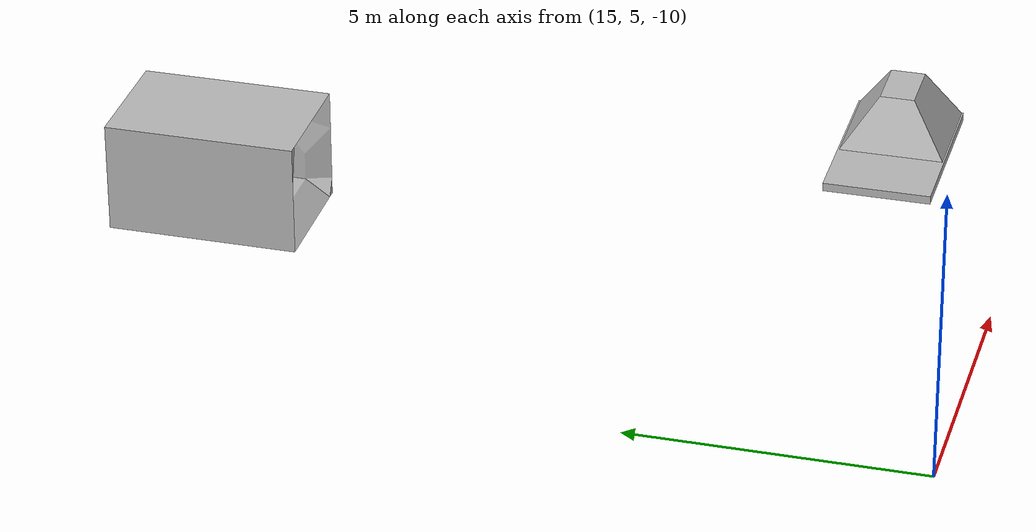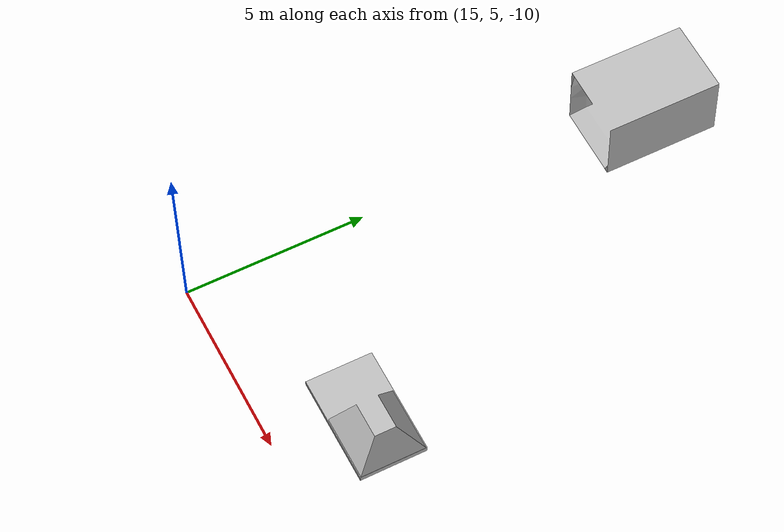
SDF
<sdf version="1.6">
 <world name="tank">
  <model name="nwu">
   <static>true</static>
   <link name="base"/>
   <link name="orientation"/>
   <joint name="__joint_orientation" type="fixed"><child>orientation</child><parent>base</parent></joint>
  </model>
  <spherical_coordinates>
   <latitude_deg>53.1119</latitude_deg>
   <longitude_deg>8.8584</longitude_deg>
   <heading_deg>90</heading_deg>
  </spherical_coordinates>
  <model name="surface"><static>true</static></model>
  <model name="usbl"><static>true</static></model>
  <include><uri>model://docking_station</uri><pose>16.80 17.52 -8 0 0 0</pose></include>
  <include><uri>model://dat</uri><pose>21.3 7 -8 0 0 -1.57</pose></include>
  <include><uri>model://apriltag_13</uri><pose>16.825 18.65 -7.3 0 -1.57 1.57</pose></include>
  <physics type="ode">
   <max_step_size>0.01</max_step_size>
   <real_time_factor>1</real_time_factor>
   <real_time_update_rate>100</real_time_update_rate>
  </physics>
  <plugin name="underwater" filename="libgazebo_underwater.so">
   <model_name>flat_fish</model_name>
   <link_name>flat_fish_body</link_name>
   <drag_coefficient>5 7.5 12.5</drag_coefficient>
   <center_of_buoyancy>0 0 0.1</center_of_buoyancy>
   <buoyancy>18</buoyancy>
  </plugin>
 </world>
</sdf>

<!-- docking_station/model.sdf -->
<sdf version="1.4">
    <model name="docking_station">
        <pose>0 0 0 0 0 0</pose>
        <static>true</static>
        <link name="docking_station_body">
            <visual name="visual">
                <geometry>
                    <mesh>
                        <uri>model://docking_station/visual.osgb</uri>
                    </mesh>
                </geometry>
            </visual>
            <collision name="collision">
                <geometry>
                    <mesh>
                        <uri>model://docking_station/collision.stl</uri>
                    </mesh>
                </geometry>
            </collision>
            <inertial>
                <pose>0 0 -1 0 0 0</pose>
                <inertia>
                    <ixx>0.0</ixx>
                    <ixy>0</ixy>
                    <ixz>0.0</ixz>
                    <iyy>0.0</iyy>
                    <iyz>0</iyz>
                    <izz>0.0</izz>
                </inertia>
                <mass>1.0</mass>
            </inertial>
        </link>
    </model>
</sdf>

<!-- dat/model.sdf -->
<sdf version="1.4">
    <model name="dat">
        <pose>0 0 0 0 0 0</pose>
        <static>true</static>
        <link name="dat_body">
            <visual name="visual">
                <geometry>
                    <mesh>
                        <uri>model://dat/visual.osgb</uri>
                    </mesh>
                </geometry>
            </visual>
            <collision name="collision">
                <geometry>
                    <mesh>
                        <uri>model://dat/collision.stl</uri>
                    </mesh>
                </geometry>
            </collision>
            <inertial>
                <pose>0 0 -1 0 0 0</pose>
                <inertia>
                    <ixx>0.0</ixx>
                    <ixy>0</ixy>
                    <ixz>0.0</ixz>
                    <iyy>0.0</iyy>
                    <iyz>0</iyz>
                    <izz>0.0</izz>
                </inertia>
                <mass>1.0</mass>
            </inertial>
        </link>
    </model>
</sdf>

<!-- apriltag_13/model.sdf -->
<sdf version="1.4">
  <model name='apriltag_13'>
  <static>true</static>
  <pose>0 0 0 0 0 0</pose>
     <link name='apriltag_body'>
      <visual name='block0'>
        <pose>-0.1575 -0.1575 0.001 0 0 0</pose>
          <geometry>
            <box>
            <size>0.035 0.035 0.003</size>
            </box>
          </geometry>
        <material>
          <ambient>1 1 1 1</ambient>
          <diffuse>1 1 1 1</diffuse>
          <specular>1 1 1 1</specular>
        </material>
      </visual>
      <visual name='block1'>
        <pose>-0.1575 -0.1225 0.001 0 0 0</pose>
          <geometry>
            <box>
            <size>0.035 0.035 0.003</size>
            </box>
          </geometry>
        <material>
          <ambient>1 1 1 1</ambient>
          <diffuse>1 1 1 1</diffuse>
          <specular>1 1 1 1</specular>
        </material>
      </visual>
      <visual name='block2'>
        <pose>-0.1575 -0.0875 0.001 0 0 0</pose>
          <geometry>
            <box>
            <size>0.035 0.035 0.003</size>
            </box>
          </geometry>
        <material>
          <ambient>1 1 1 1</ambient>
          <diffuse>1 1 1 1</diffuse>
          <specular>1 1 1 1</specular>
        </material>
      </visual>
      <visual name='block3'>
        <pose>-0.1575 -0.0525 0.001 0 0 0</pose>
          <geometry>
            <box>
            <size>0.035 0.035 0.003</size>
            </box>
          </geometry>
        <material>
          <ambient>1 1 1 1</ambient>
          <diffuse>1 1 1 1</diffuse>
          <specular>1 1 1 1</specular>
        </material>
      </visual>
      <visual name='block4'>
        <pose>-0.1575 -0.0175 0.001 0 0 0</pose>
          <geometry>
            <box>
            <size>0.035 0.035 0.003</size>
            </box>
          </geometry>
        <material>
          <ambient>1 1 1 1</ambient>
          <diffuse>1 1 1 1</diffuse>
          <specular>1 1 1 1</specular>
        </material>
      </visual>
      <visual name='block5'>
        <pose>-0.1575 0.0175 0.001 0 0 0</pose>
          <geometry>
            <box>
            <size>0.035 0.035 0.003</size>
            </box>
          </geometry>
        <material>
          <ambient>1 1 1 1</ambient>
          <diffuse>1 1 1 1</diffuse>
          <specular>1 1 1 1</specular>
        </material>
      </visual>
      <visual name='block6'>
        <pose>-0.1575 0.0525 0.001 0 0 0</pose>
          <geometry>
            <box>
            <size>0.035 0.035 0.003</size>
            </box>
          </geometry>
        <material>
          <ambient>1 1 1 1</ambient>
          <diffuse>1 1 1 1</diffuse>
          <specular>1 1 1 1</specular>
        </material>
      </visual>
      <visual name='block7'>
        <pose>-0.1575 0.0875 0.001 0 0 0</pose>
          <geometry>
            <box>
            <size>0.035 0.035 0.003</size>
            </box>
          </geometry>
        <material>
          <ambient>1 1 1 1</ambient>
          <diffuse>1 1 1 1</diffuse>
          <specular>1 1 1 1</specular>
        </material>
      </visual>
      <visual name='block8'>
        <pose>-0.1575 0.1225 0.001 0 0 0</pose>
          <geometry>
            <box>
            <size>0.035 0.035 0.003</size>
            </box>
          </geometry>
        <material>
          <ambient>1 1 1 1</ambient>
          <diffuse>1 1 1 1</diffuse>
          <specular>1 1 1 1</specular>
        </material>
      </visual>
      <visual name='block9'>
        <pose>-0.1575 0.1575 0.001 0 0 0</pose>
          <geometry>
            <box>
            <size>0.035 0.035 0.003</size>
            </box>
          </geometry>
        <material>
          <ambient>1 1 1 1</ambient>
          <diffuse>1 1 1 1</diffuse>
          <specular>1 1 1 1</specular>
        </material>
      </visual>
      <visual name='block10'>
        <pose>-0.1225 -0.1575 0.001 0 0 0</pose>
          <geometry>
            <box>
            <size>0.035 0.035 0.003</size>
            </box>
          </geometry>
        <material>
          <ambient>1 1 1 1</ambient>
          <diffuse>1 1 1 1</diffuse>
          <specular>1 1 1 1</specular>
        </material>
      </visual>
      <visual name='block11'>
        <pose>-0.1225 -0.1225 0.001 0 0 0</pose>
          <geometry>
            <box>
            <size>0.035 0.035 0.003</size>
            </box>
          </geometry>
        <material>
          <ambient>0 0 0 1</ambient>
          <diffuse>0 0 0 1</diffuse>
          <specular>0 0 0 1</specular>
        </material>
      </visual>
      <visual name='block12'>
        <pose>-0.1225 -0.0875 0.001 0 0 0</pose>
          <geometry>
            <box>
            <size>0.035 0.035 0.003</size>
            </box>
          </geometry>
        <material>
          <ambient>0 0 0 1</ambient>
          <diffuse>0 0 0 1</diffuse>
          <specular>0 0 0 1</specular>
        </material>
      </visual>
      <visual name='block13'>
        <pose>-0.1225 -0.0525 0.001 0 0 0</pose>
          <geometry>
            <box>
            <size>0.035 0.035 0.003</size>
            </box>
          </geometry>
        <material>
          <ambient>0 0 0 1</ambient>
          <diffuse>0 0 0 1</diffuse>
          <specular>0 0 0 1</specular>
        </material>
      </visual>
      <visual name='block14'>
        <pose>-0.1225 -0.0175 0.001 0 0 0</pose>
          <geometry>
            <box>
            <size>0.035 0.035 0.003</size>
            </box>
          </geometry>
        <material>
          <ambient>0 0 0 1</ambient>
          <diffuse>0 0 0 1</diffuse>
          <specular>0 0 0 1</specular>
        </material>
      </visual>
      <visual name='block15'>
        <pose>-0.1225 0.0175 0.001 0 0 0</pose>
          <geometry>
            <box>
            <size>0.035 0.035 0.003</size>
            </box>
          </geometry>
        <material>
          <ambient>0 0 0 1</ambient>
          <diffuse>0 0 0 1</diffuse>
          <specular>0 0 0 1</specular>
        </material>
      </visual>
      <visual name='block16'>
        <pose>-0.1225 0.0525 0.001 0 0 0</pose>
          <geometry>
            <box>
            <size>0.035 0.035 0.003</size>
            </box>
          </geometry>
        <material>
          <ambient>0 0 0 1</ambient>
          <diffuse>0 0 0 1</diffuse>
          <specular>0 0 0 1</specular>
        </material>
      </visual>
      <visual name='block17'>
        <pose>-0.1225 0.0875 0.001 0 0 0</pose>
          <geometry>
            <box>
            <size>0.035 0.035 0.003</size>
            </box>
          </geometry>
        <material>
          <ambient>0 0 0 1</ambient>
          <diffuse>0 0 0 1</diffuse>
          <specular>0 0 0 1</specular>
        </material>
      </visual>
      <visual name='block18'>
        <pose>-0.1225 0.1225 0.001 0 0 0</pose>
          <geometry>
            <box>
            <size>0.035 0.035 0.003</size>
            </box>
          </geometry>
        <material>
          <ambient>0 0 0 1</ambient>
          <diffuse>0 0 0 1</diffuse>
          <specular>0 0 0 1</specular>
        </material>
      </visual>
      <visual name='block19'>
        <pose>-0.1225 0.1575 0.001 0 0 0</pose>
          <geometry>
            <box>
            <size>0.035 0.035 0.003</size>
            </box>
          </geometry>
        <material>
          <ambient>1 1 1 1</ambient>
          <diffuse>1 1 1 1</diffuse>
          <specular>1 1 1 1</specular>
        </material>
      </visual>
      <visual name='block20'>
        <pose>-0.0875 -0.1575 0.001 0 0 0</pose>
          <geometry>
            <box>
            <size>0.035 0.035 0.003</size>
            </box>
          </geometry>
        <material>
          <ambient>1 1 1 1</ambient>
          <diffuse>1 1 1 1</diffuse>
          <specular>1 1 1 1</specular>
        </material>
      </visual>
      <visual name='block21'>
        <pose>-0.0875 -0.1225 0.001 0 0 0</pose>
          <geometry>
            <box>
            <size>0.035 0.035 0.003</size>
            </box>
          </geometry>
        <material>
          <ambient>0 0 0 1</ambient>
          <diffuse>0 0 0 1</diffuse>
          <specular>0 0 0 1</specular>
        </material>
      </visual>
      <visual name='block22'>
        <pose>-0.0875 -0.0875 0.001 0 0 0</pose>
          <geometry>
            <box>
            <size>0.035 0.035 0.003</size>
            </box>
          </geometry>
        <material>
          <ambient>0 0 0 1</ambient>
          <diffuse>0 0 0 1</diffuse>
          <specular>0 0 0 1</specular>
        </material>
      </visual>
      <visual name='block23'>
        <pose>-0.0875 -0.0525 0.001 0 0 0</pose>
          <geometry>
            <box>
            <size>0.035 0.035 0.003</size>
            </box>
          </geometry>
        <material>
          <ambient>1 1 1 1</ambient>
          <diffuse>1 1 1 1</diffuse>
          <specular>1 1 1 1</specular>
        </material>
      </visual>
      <visual name='block24'>
        <pose>-0.0875 -0.0175 0.001 0 0 0</pose>
          <geometry>
            <box>
            <size>0.035 0.035 0.003</size>
            </box>
          </geometry>
        <material>
          <ambient>0 0 0 1</ambient>
          <diffuse>0 0 0 1</diffuse>
          <specular>0 0 0 1</specular>
        </material>
      </visual>
      <visual name='block25'>
        <pose>-0.0875 0.0175 0.001 0 0 0</pose>
          <geometry>
            <box>
            <size>0.035 0.035 0.003</size>
            </box>
          </geometry>
        <material>
          <ambient>1 1 1 1</ambient>
          <diffuse>1 1 1 1</diffuse>
          <specular>1 1 1 1</specular>
        </material>
      </visual>
      <visual name='block26'>
        <pose>-0.0875 0.0525 0.001 0 0 0</pose>
          <geometry>
            <box>
            <size>0.035 0.035 0.003</size>
            </box>
          </geometry>
        <material>
          <ambient>1 1 1 1</ambient>
          <diffuse>1 1 1 1</diffuse>
          <specular>1 1 1 1</specular>
        </material>
      </visual>
      <visual name='block27'>
        <pose>-0.0875 0.0875 0.001 0 0 0</pose>
          <geometry>
            <box>
            <size>0.035 0.035 0.003</size>
            </box>
          </geometry>
        <material>
          <ambient>0 0 0 1</ambient>
          <diffuse>0 0 0 1</diffuse>
          <specular>0 0 0 1</specular>
        </material>
      </visual>
      <visual name='block28'>
        <pose>-0.0875 0.1225 0.001 0 0 0</pose>
          <geometry>
            <box>
            <size>0.035 0.035 0.003</size>
            </box>
          </geometry>
        <material>
          <ambient>0 0 0 1</ambient>
          <diffuse>0 0 0 1</diffuse>
          <specular>0 0 0 1</specular>
        </material>
      </visual>
      <visual name='block29'>
        <pose>-0.0875 0.1575 0.001 0 0 0</pose>
          <geometry>
            <box>
            <size>0.035 0.035 0.003</size>
            </box>
          </geometry>
        <material>
          <ambient>1 1 1 1</ambient>
          <diffuse>1 1 1 1</diffuse>
          <specular>1 1 1 1</specular>
        </material>
      </visual>
      <visual name='block30'>
        <pose>-0.0525 -0.1575 0.001 0 0 0</pose>
          <geometry>
            <box>
            <size>0.035 0.035 0.003</size>
            </box>
          </geometry>
        <material>
          <ambient>1 1 1 1</ambient>
          <diffuse>1 1 1 1</diffuse>
          <specular>1 1 1 1</specular>
        </material>
      </visual>
      <visual name='block31'>
        <pose>-0.0525 -0.1225 0.001 0 0 0</pose>
          <geometry>
            <box>
            <size>0.035 0.035 0.003</size>
            </box>
          </geometry>
        <material>
          <ambient>0 0 0 1</ambient>
          <diffuse>0 0 0 1</diffuse>
          <specular>0 0 0 1</specular>
        </material>
      </visual>
      <visual name='block32'>
        <pose>-0.0525 -0.0875 0.001 0 0 0</pose>
          <geometry>
            <box>
            <size>0.035 0.035 0.003</size>
            </box>
          </geometry>
        <material>
          <ambient>1 1 1 1</ambient>
          <diffuse>1 1 1 1</diffuse>
          <specular>1 1 1 1</specular>
        </material>
      </visual>
      <visual name='block33'>
        <pose>-0.0525 -0.0525 0.001 0 0 0</pose>
          <geometry>
            <box>
            <size>0.035 0.035 0.003</size>
            </box>
          </geometry>
        <material>
          <ambient>0 0 0 1</ambient>
          <diffuse>0 0 0 1</diffuse>
          <specular>0 0 0 1</specular>
        </material>
      </visual>
      <visual name='block34'>
        <pose>-0.0525 -0.0175 0.001 0 0 0</pose>
          <geometry>
            <box>
            <size>0.035 0.035 0.003</size>
            </box>
          </geometry>
        <material>
          <ambient>0 0 0 1</ambient>
          <diffuse>0 0 0 1</diffuse>
          <specular>0 0 0 1</specular>
        </material>
      </visual>
      <visual name='block35'>
        <pose>-0.0525 0.0175 0.001 0 0 0</pose>
          <geometry>
            <box>
            <size>0.035 0.035 0.003</size>
            </box>
          </geometry>
        <material>
          <ambient>0 0 0 1</ambient>
          <diffuse>0 0 0 1</diffuse>
          <specular>0 0 0 1</specular>
        </material>
      </visual>
      <visual name='block36'>
        <pose>-0.0525 0.0525 0.001 0 0 0</pose>
          <geometry>
            <box>
            <size>0.035 0.035 0.003</size>
            </box>
          </geometry>
        <material>
          <ambient>1 1 1 1</ambient>
          <diffuse>1 1 1 1</diffuse>
          <specular>1 1 1 1</specular>
        </material>
      </visual>
      <visual name='block37'>
        <pose>-0.0525 0.0875 0.001 0 0 0</pose>
          <geometry>
            <box>
            <size>0.035 0.035 0.003</size>
            </box>
          </geometry>
        <material>
          <ambient>1 1 1 1</ambient>
          <diffuse>1 1 1 1</diffuse>
          <specular>1 1 1 1</specular>
        </material>
      </visual>
      <visual name='block38'>
        <pose>-0.0525 0.1225 0.001 0 0 0</pose>
          <geometry>
            <box>
            <size>0.035 0.035 0.003</size>
            </box>
          </geometry>
        <material>
          <ambient>0 0 0 1</ambient>
          <diffuse>0 0 0 1</diffuse>
          <specular>0 0 0 1</specular>
        </material>
      </visual>
      <visual name='block39'>
        <pose>-0.0525 0.1575 0.001 0 0 0</pose>
          <geometry>
            <box>
            <size>0.035 0.035 0.003</size>
            </box>
          </geometry>
        <material>
          <ambient>1 1 1 1</ambient>
          <diffuse>1 1 1 1</diffuse>
          <specular>1 1 1 1</specular>
        </material>
      </visual>
      <visual name='block40'>
        <pose>-0.0175 -0.1575 0.001 0 0 0</pose>
          <geometry>
            <box>
            <size>0.035 0.035 0.003</size>
            </box>
          </geometry>
        <material>
          <ambient>1 1 1 1</ambient>
          <diffuse>1 1 1 1</diffuse>
          <specular>1 1 1 1</specular>
        </material>
      </visual>
      <visual name='block41'>
        <pose>-0.0175 -0.1225 0.001 0 0 0</pose>
          <geometry>
            <box>
            <size>0.035 0.035 0.003</size>
            </box>
          </geometry>
        <material>
          <ambient>0 0 0 1</ambient>
          <diffuse>0 0 0 1</diffuse>
          <specular>0 0 0 1</specular>
        </material>
      </visual>
      <visual name='block42'>
        <pose>-0.0175 -0.0875 0.001 0 0 0</pose>
          <geometry>
            <box>
            <size>0.035 0.035 0.003</size>
            </box>
          </geometry>
        <material>
          <ambient>1 1 1 1</ambient>
          <diffuse>1 1 1 1</diffuse>
          <specular>1 1 1 1</specular>
        </material>
      </visual>
      <visual name='block43'>
        <pose>-0.0175 -0.0525 0.001 0 0 0</pose>
          <geometry>
            <box>
            <size>0.035 0.035 0.003</size>
            </box>
          </geometry>
        <material>
          <ambient>0 0 0 1</ambient>
          <diffuse>0 0 0 1</diffuse>
          <specular>0 0 0 1</specular>
        </material>
      </visual>
      <visual name='block44'>
        <pose>-0.0175 -0.0175 0.001 0 0 0</pose>
          <geometry>
            <box>
            <size>0.035 0.035 0.003</size>
            </box>
          </geometry>
        <material>
          <ambient>0 0 0 1</ambient>
          <diffuse>0 0 0 1</diffuse>
          <specular>0 0 0 1</specular>
        </material>
      </visual>
      <visual name='block45'>
        <pose>-0.0175 0.0175 0.001 0 0 0</pose>
          <geometry>
            <box>
            <size>0.035 0.035 0.003</size>
            </box>
          </geometry>
        <material>
          <ambient>1 1 1 1</ambient>
          <diffuse>1 1 1 1</diffuse>
          <specular>1 1 1 1</specular>
        </material>
      </visual>
      <visual name='block46'>
        <pose>-0.0175 0.0525 0.001 0 0 0</pose>
          <geometry>
            <box>
            <size>0.035 0.035 0.003</size>
            </box>
          </geometry>
        <material>
          <ambient>0 0 0 1</ambient>
          <diffuse>0 0 0 1</diffuse>
          <specular>0 0 0 1</specular>
        </material>
      </visual>
      <visual name='block47'>
        <pose>-0.0175 0.0875 0.001 0 0 0</pose>
          <geometry>
            <box>
            <size>0.035 0.035 0.003</size>
            </box>
          </geometry>
        <material>
          <ambient>0 0 0 1</ambient>
          <diffuse>0 0 0 1</diffuse>
          <specular>0 0 0 1</specular>
        </material>
      </visual>
      <visual name='block48'>
        <pose>-0.0175 0.1225 0.001 0 0 0</pose>
          <geometry>
            <box>
            <size>0.035 0.035 0.003</size>
            </box>
          </geometry>
        <material>
          <ambient>0 0 0 1</ambient>
          <diffuse>0 0 0 1</diffuse>
          <specular>0 0 0 1</specular>
        </material>
      </visual>
      <visual name='block49'>
        <pose>-0.0175 0.1575 0.001 0 0 0</pose>
          <geometry>
            <box>
            <size>0.035 0.035 0.003</size>
            </box>
          </geometry>
        <material>
          <ambient>1 1 1 1</ambient>
          <diffuse>1 1 1 1</diffuse>
          <specular>1 1 1 1</specular>
        </material>
      </visual>
      <visual name='block50'>
        <pose>0.0175 -0.1575 0.001 0 0 0</pose>
          <geometry>
            <box>
            <size>0.035 0.035 0.003</size>
            </box>
          </geometry>
        <material>
          <ambient>1 1 1 1</ambient>
          <diffuse>1 1 1 1</diffuse>
          <specular>1 1 1 1</specular>
        </material>
      </visual>
      <visual name='block51'>
        <pose>0.0175 -0.1225 0.001 0 0 0</pose>
          <geometry>
            <box>
            <size>0.035 0.035 0.003</size>
            </box>
          </geometry>
        <material>
          <ambient>0 0 0 1</ambient>
          <diffuse>0 0 0 1</diffuse>
          <specular>0 0 0 1</specular>
        </material>
      </visual>
      <visual name='block52'>
        <pose>0.0175 -0.0875 0.001 0 0 0</pose>
          <geometry>
            <box>
            <size>0.035 0.035 0.003</size>
            </box>
          </geometry>
        <material>
          <ambient>1 1 1 1</ambient>
          <diffuse>1 1 1 1</diffuse>
          <specular>1 1 1 1</specular>
        </material>
      </visual>
      <visual name='block53'>
        <pose>0.0175 -0.0525 0.001 0 0 0</pose>
          <geometry>
            <box>
            <size>0.035 0.035 0.003</size>
            </box>
          </geometry>
        <material>
          <ambient>0 0 0 1</ambient>
          <diffuse>0 0 0 1</diffuse>
          <specular>0 0 0 1</specular>
        </material>
      </visual>
      <visual name='block54'>
        <pose>0.0175 -0.0175 0.001 0 0 0</pose>
          <geometry>
            <box>
            <size>0.035 0.035 0.003</size>
            </box>
          </geometry>
        <material>
          <ambient>0 0 0 1</ambient>
          <diffuse>0 0 0 1</diffuse>
          <specular>0 0 0 1</specular>
        </material>
      </visual>
      <visual name='block55'>
        <pose>0.0175 0.0175 0.001 0 0 0</pose>
          <geometry>
            <box>
            <size>0.035 0.035 0.003</size>
            </box>
          </geometry>
        <material>
          <ambient>1 1 1 1</ambient>
          <diffuse>1 1 1 1</diffuse>
          <specular>1 1 1 1</specular>
        </material>
      </visual>
      <visual name='block56'>
        <pose>0.0175 0.0525 0.001 0 0 0</pose>
          <geometry>
            <box>
            <size>0.035 0.035 0.003</size>
            </box>
          </geometry>
        <material>
          <ambient>1 1 1 1</ambient>
          <diffuse>1 1 1 1</diffuse>
          <specular>1 1 1 1</specular>
        </material>
      </visual>
      <visual name='block57'>
        <pose>0.0175 0.0875 0.001 0 0 0</pose>
          <geometry>
            <box>
            <size>0.035 0.035 0.003</size>
            </box>
          </geometry>
        <material>
          <ambient>0 0 0 1</ambient>
          <diffuse>0 0 0 1</diffuse>
          <specular>0 0 0 1</specular>
        </material>
      </visual>
      <visual name='block58'>
        <pose>0.0175 0.1225 0.001 0 0 0</pose>
          <geometry>
            <box>
            <size>0.035 0.035 0.003</size>
            </box>
          </geometry>
        <material>
          <ambient>0 0 0 1</ambient>
          <diffuse>0 0 0 1</diffuse>
          <specular>0 0 0 1</specular>
        </material>
      </visual>
      <visual name='block59'>
        <pose>0.0175 0.1575 0.001 0 0 0</pose>
          <geometry>
            <box>
            <size>0.035 0.035 0.003</size>
            </box>
          </geometry>
        <material>
          <ambient>1 1 1 1</ambient>
          <diffuse>1 1 1 1</diffuse>
          <specular>1 1 1 1</specular>
        </material>
      </visual>
      <visual name='block60'>
        <pose>0.0525 -0.1575 0.001 0 0 0</pose>
          <geometry>
            <box>
            <size>0.035 0.035 0.003</size>
            </box>
          </geometry>
        <material>
          <ambient>1 1 1 1</ambient>
          <diffuse>1 1 1 1</diffuse>
          <specular>1 1 1 1</specular>
        </material>
      </visual>
      <visual name='block61'>
        <pose>0.0525 -0.1225 0.001 0 0 0</pose>
          <geometry>
            <box>
            <size>0.035 0.035 0.003</size>
            </box>
          </geometry>
        <material>
          <ambient>0 0 0 1</ambient>
          <diffuse>0 0 0 1</diffuse>
          <specular>0 0 0 1</specular>
        </material>
      </visual>
      <visual name='block62'>
        <pose>0.0525 -0.0875 0.001 0 0 0</pose>
          <geometry>
            <box>
            <size>0.035 0.035 0.003</size>
            </box>
          </geometry>
        <material>
          <ambient>1 1 1 1</ambient>
          <diffuse>1 1 1 1</diffuse>
          <specular>1 1 1 1</specular>
        </material>
      </visual>
      <visual name='block63'>
        <pose>0.0525 -0.0525 0.001 0 0 0</pose>
          <geometry>
            <box>
            <size>0.035 0.035 0.003</size>
            </box>
          </geometry>
        <material>
          <ambient>0 0 0 1</ambient>
          <diffuse>0 0 0 1</diffuse>
          <specular>0 0 0 1</specular>
        </material>
      </visual>
      <visual name='block64'>
        <pose>0.0525 -0.0175 0.001 0 0 0</pose>
          <geometry>
            <box>
            <size>0.035 0.035 0.003</size>
            </box>
          </geometry>
        <material>
          <ambient>1 1 1 1</ambient>
          <diffuse>1 1 1 1</diffuse>
          <specular>1 1 1 1</specular>
        </material>
      </visual>
      <visual name='block65'>
        <pose>0.0525 0.0175 0.001 0 0 0</pose>
          <geometry>
            <box>
            <size>0.035 0.035 0.003</size>
            </box>
          </geometry>
        <material>
          <ambient>0 0 0 1</ambient>
          <diffuse>0 0 0 1</diffuse>
          <specular>0 0 0 1</specular>
        </material>
      </visual>
      <visual name='block66'>
        <pose>0.0525 0.0525 0.001 0 0 0</pose>
          <geometry>
            <box>
            <size>0.035 0.035 0.003</size>
            </box>
          </geometry>
        <material>
          <ambient>0 0 0 1</ambient>
          <diffuse>0 0 0 1</diffuse>
          <specular>0 0 0 1</specular>
        </material>
      </visual>
      <visual name='block67'>
        <pose>0.0525 0.0875 0.001 0 0 0</pose>
          <geometry>
            <box>
            <size>0.035 0.035 0.003</size>
            </box>
          </geometry>
        <material>
          <ambient>0 0 0 1</ambient>
          <diffuse>0 0 0 1</diffuse>
          <specular>0 0 0 1</specular>
        </material>
      </visual>
      <visual name='block68'>
        <pose>0.0525 0.1225 0.001 0 0 0</pose>
          <geometry>
            <box>
            <size>0.035 0.035 0.003</size>
            </box>
          </geometry>
        <material>
          <ambient>0 0 0 1</ambient>
          <diffuse>0 0 0 1</diffuse>
          <specular>0 0 0 1</specular>
        </material>
      </visual>
      <visual name='block69'>
        <pose>0.0525 0.1575 0.001 0 0 0</pose>
          <geometry>
            <box>
            <size>0.035 0.035 0.003</size>
            </box>
          </geometry>
        <material>
          <ambient>1 1 1 1</ambient>
          <diffuse>1 1 1 1</diffuse>
          <specular>1 1 1 1</specular>
        </material>
      </visual>
      <visual name='block70'>
        <pose>0.0875 -0.1575 0.001 0 0 0</pose>
          <geometry>
            <box>
            <size>0.035 0.035 0.003</size>
            </box>
          </geometry>
        <material>
          <ambient>1 1 1 1</ambient>
          <diffuse>1 1 1 1</diffuse>
          <specular>1 1 1 1</specular>
        </material>
      </visual>
      <visual name='block71'>
        <pose>0.0875 -0.1225 0.001 0 0 0</pose>
          <geometry>
            <box>
            <size>0.035 0.035 0.003</size>
            </box>
          </geometry>
        <material>
          <ambient>0 0 0 1</ambient>
          <diffuse>0 0 0 1</diffuse>
          <specular>0 0 0 1</specular>
        </material>
      </visual>
      <visual name='block72'>
        <pose>0.0875 -0.0875 0.001 0 0 0</pose>
          <geometry>
            <box>
            <size>0.035 0.035 0.003</size>
            </box>
          </geometry>
        <material>
          <ambient>1 1 1 1</ambient>
          <diffuse>1 1 1 1</diffuse>
          <specular>1 1 1 1</specular>
        </material>
      </visual>
      <visual name='block73'>
        <pose>0.0875 -0.0525 0.001 0 0 0</pose>
          <geometry>
            <box>
            <size>0.035 0.035 0.003</size>
            </box>
          </geometry>
        <material>
          <ambient>1 1 1 1</ambient>
          <diffuse>1 1 1 1</diffuse>
          <specular>1 1 1 1</specular>
        </material>
      </visual>
      <visual name='block74'>
        <pose>0.0875 -0.0175 0.001 0 0 0</pose>
          <geometry>
            <box>
            <size>0.035 0.035 0.003</size>
            </box>
          </geometry>
        <material>
          <ambient>1 1 1 1</ambient>
          <diffuse>1 1 1 1</diffuse>
          <specular>1 1 1 1</specular>
        </material>
      </visual>
      <visual name='block75'>
        <pose>0.0875 0.0175 0.001 0 0 0</pose>
          <geometry>
            <box>
            <size>0.035 0.035 0.003</size>
            </box>
          </geometry>
        <material>
          <ambient>1 1 1 1</ambient>
          <diffuse>1 1 1 1</diffuse>
          <specular>1 1 1 1</specular>
        </material>
      </visual>
      <visual name='block76'>
        <pose>0.0875 0.0525 0.001 0 0 0</pose>
          <geometry>
            <box>
            <size>0.035 0.035 0.003</size>
            </box>
          </geometry>
        <material>
          <ambient>0 0 0 1</ambient>
          <diffuse>0 0 0 1</diffuse>
          <specular>0 0 0 1</specular>
        </material>
      </visual>
      <visual name='block77'>
        <pose>0.0875 0.0875 0.001 0 0 0</pose>
          <geometry>
            <box>
            <size>0.035 0.035 0.003</size>
            </box>
          </geometry>
        <material>
          <ambient>1 1 1 1</ambient>
          <diffuse>1 1 1 1</diffuse>
          <specular>1 1 1 1</specular>
        </material>
      </visual>
      <visual name='block78'>
        <pose>0.0875 0.1225 0.001 0 0 0</pose>
          <geometry>
            <box>
            <size>0.035 0.035 0.003</size>
            </box>
          </geometry>
        <material>
          <ambient>0 0 0 1</ambient>
          <diffuse>0 0 0 1</diffuse>
          <specular>0 0 0 1</specular>
        </material>
      </visual>
      <visual name='block79'>
        <pose>0.0875 0.1575 0.001 0 0 0</pose>
          <geometry>
            <box>
            <size>0.035 0.035 0.003</size>
            </box>
          </geometry>
        <material>
          <ambient>1 1 1 1</ambient>
          <diffuse>1 1 1 1</diffuse>
          <specular>1 1 1 1</specular>
        </material>
      </visual>
      <visual name='block80'>
        <pose>0.1225 -0.1575 0.001 0 0 0</pose>
          <geometry>
            <box>
            <size>0.035 0.035 0.003</size>
            </box>
          </geometry>
        <material>
          <ambient>1 1 1 1</ambient>
          <diffuse>1 1 1 1</diffuse>
          <specular>1 1 1 1</specular>
        </material>
      </visual>
      <visual name='block81'>
        <pose>0.1225 -0.1225 0.001 0 0 0</pose>
          <geometry>
            <box>
            <size>0.035 0.035 0.003</size>
            </box>
          </geometry>
        <material>
          <ambient>0 0 0 1</ambient>
          <diffuse>0 0 0 1</diffuse>
          <specular>0 0 0 1</specular>
        </material>
      </visual>
      <visual name='block82'>
        <pose>0.1225 -0.0875 0.001 0 0 0</pose>
          <geometry>
            <box>
            <size>0.035 0.035 0.003</size>
            </box>
          </geometry>
        <material>
          <ambient>0 0 0 1</ambient>
          <diffuse>0 0 0 1</diffuse>
          <specular>0 0 0 1</specular>
        </material>
      </visual>
      <visual name='block83'>
        <pose>0.1225 -0.0525 0.001 0 0 0</pose>
          <geometry>
            <box>
            <size>0.035 0.035 0.003</size>
            </box>
          </geometry>
        <material>
          <ambient>0 0 0 1</ambient>
          <diffuse>0 0 0 1</diffuse>
          <specular>0 0 0 1</specular>
        </material>
      </visual>
      <visual name='block84'>
        <pose>0.1225 -0.0175 0.001 0 0 0</pose>
          <geometry>
            <box>
            <size>0.035 0.035 0.003</size>
            </box>
          </geometry>
        <material>
          <ambient>0 0 0 1</ambient>
          <diffuse>0 0 0 1</diffuse>
          <specular>0 0 0 1</specular>
        </material>
      </visual>
      <visual name='block85'>
        <pose>0.1225 0.0175 0.001 0 0 0</pose>
          <geometry>
            <box>
            <size>0.035 0.035 0.003</size>
            </box>
          </geometry>
        <material>
          <ambient>0 0 0 1</ambient>
          <diffuse>0 0 0 1</diffuse>
          <specular>0 0 0 1</specular>
        </material>
      </visual>
      <visual name='block86'>
        <pose>0.1225 0.0525 0.001 0 0 0</pose>
          <geometry>
            <box>
            <size>0.035 0.035 0.003</size>
            </box>
          </geometry>
        <material>
          <ambient>0 0 0 1</ambient>
          <diffuse>0 0 0 1</diffuse>
          <specular>0 0 0 1</specular>
        </material>
      </visual>
      <visual name='block87'>
        <pose>0.1225 0.0875 0.001 0 0 0</pose>
          <geometry>
            <box>
            <size>0.035 0.035 0.003</size>
            </box>
          </geometry>
        <material>
          <ambient>0 0 0 1</ambient>
          <diffuse>0 0 0 1</diffuse>
          <specular>0 0 0 1</specular>
        </material>
      </visual>
      <visual name='block88'>
        <pose>0.1225 0.1225 0.001 0 0 0</pose>
          <geometry>
            <box>
            <size>0.035 0.035 0.003</size>
            </box>
          </geometry>
        <material>
          <ambient>0 0 0 1</ambient>
          <diffuse>0 0 0 1</diffuse>
          <specular>0 0 0 1</specular>
        </material>
      </visual>
      <visual name='block89'>
        <pose>0.1225 0.1575 0.001 0 0 0</pose>
          <geometry>
            <box>
            <size>0.035 0.035 0.003</size>
            </box>
          </geometry>
        <material>
          <ambient>1 1 1 1</ambient>
          <diffuse>1 1 1 1</diffuse>
          <specular>1 1 1 1</specular>
        </material>
      </visual>
      <visual name='block90'>
        <pose>0.1575 -0.1575 0.001 0 0 0</pose>
          <geometry>
            <box>
            <size>0.035 0.035 0.003</size>
            </box>
          </geometry>
        <material>
          <ambient>1 1 1 1</ambient>
          <diffuse>1 1 1 1</diffuse>
          <specular>1 1 1 1</specular>
        </material>
      </visual>
      <visual name='block91'>
        <pose>0.1575 -0.1225 0.001 0 0 0</pose>
          <geometry>
            <box>
            <size>0.035 0.035 0.003</size>
            </box>
          </geometry>
        <material>
          <ambient>1 1 1 1</ambient>
          <diffuse>1 1 1 1</diffuse>
          <specular>1 1 1 1</specular>
        </material>
      </visual>
      <visual name='block92'>
        <pose>0.1575 -0.0875 0.001 0 0 0</pose>
          <geometry>
            <box>
            <size>0.035 0.035 0.003</size>
            </box>
          </geometry>
        <material>
          <ambient>1 1 1 1</ambient>
          <diffuse>1 1 1 1</diffuse>
          <specular>1 1 1 1</specular>
        </material>
      </visual>
      <visual name='block93'>
        <pose>0.1575 -0.0525 0.001 0 0 0</pose>
          <geometry>
            <box>
            <size>0.035 0.035 0.003</size>
            </box>
          </geometry>
        <material>
          <ambient>1 1 1 1</ambient>
          <diffuse>1 1 1 1</diffuse>
          <specular>1 1 1 1</specular>
        </material>
      </visual>
      <visual name='block94'>
        <pose>0.1575 -0.0175 0.001 0 0 0</pose>
          <geometry>
            <box>
            <size>0.035 0.035 0.003</size>
            </box>
          </geometry>
        <material>
          <ambient>1 1 1 1</ambient>
          <diffuse>1 1 1 1</diffuse>
          <specular>1 1 1 1</specular>
        </material>
      </visual>
      <visual name='block95'>
        <pose>0.1575 0.0175 0.001 0 0 0</pose>
          <geometry>
            <box>
            <size>0.035 0.035 0.003</size>
            </box>
          </geometry>
        <material>
          <ambient>1 1 1 1</ambient>
          <diffuse>1 1 1 1</diffuse>
          <specular>1 1 1 1</specular>
        </material>
      </visual>
      <visual name='block96'>
        <pose>0.1575 0.0525 0.001 0 0 0</pose>
          <geometry>
            <box>
            <size>0.035 0.035 0.003</size>
            </box>
          </geometry>
        <material>
          <ambient>1 1 1 1</ambient>
          <diffuse>1 1 1 1</diffuse>
          <specular>1 1 1 1</specular>
        </material>
      </visual>
      <visual name='block97'>
        <pose>0.1575 0.0875 0.001 0 0 0</pose>
          <geometry>
            <box>
            <size>0.035 0.035 0.003</size>
            </box>
          </geometry>
        <material>
          <ambient>1 1 1 1</ambient>
          <diffuse>1 1 1 1</diffuse>
          <specular>1 1 1 1</specular>
        </material>
      </visual>
      <visual name='block98'>
        <pose>0.1575 0.1225 0.001 0 0 0</pose>
          <geometry>
            <box>
            <size>0.035 0.035 0.003</size>
            </box>
          </geometry>
        <material>
          <ambient>1 1 1 1</ambient>
          <diffuse>1 1 1 1</diffuse>
          <specular>1 1 1 1</specular>
        </material>
      </visual>
      <visual name='block99'>
        <pose>0.1575 0.1575 0.001 0 0 0</pose>
          <geometry>
            <box>
            <size>0.035 0.035 0.003</size>
            </box>
          </geometry>
        <material>
          <ambient>1 1 1 1</ambient>
          <diffuse>1 1 1 1</diffuse>
          <specular>1 1 1 1</specular>
        </material>
      </visual>
      <visual name='thin_layer'>
        <pose>0 0 0 0 0 0</pose>
          <geometry>
            <box>
            <size>0.35 0.35 0.001</size>
            </box>
          </geometry>
        <material>
          <ambient>0 0 0 1</ambient>
          <diffuse>0 0 0 1</diffuse>
          <specular>0 0 0 1</specular>
        </material>
      </visual>
    </link>
  </model>
</sdf>
